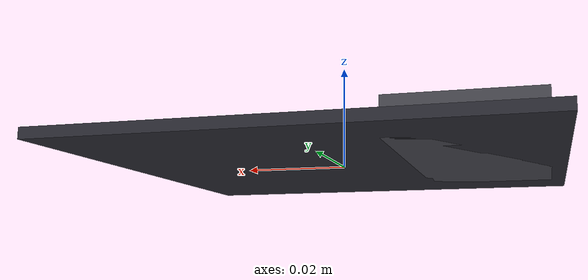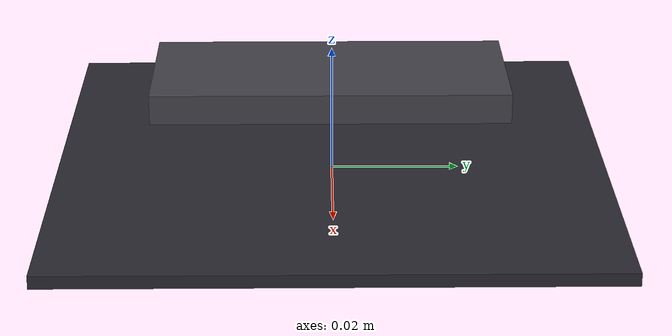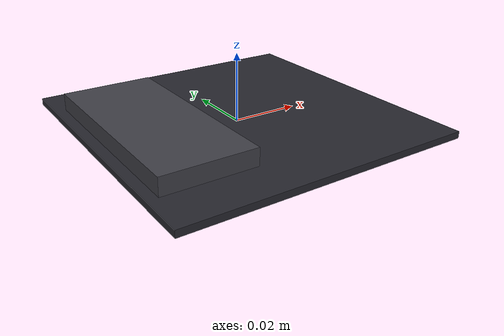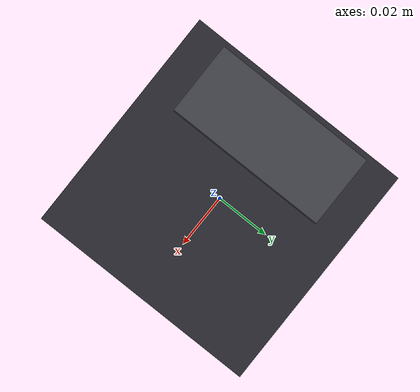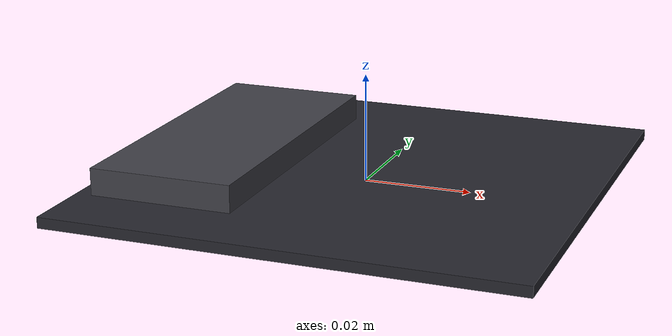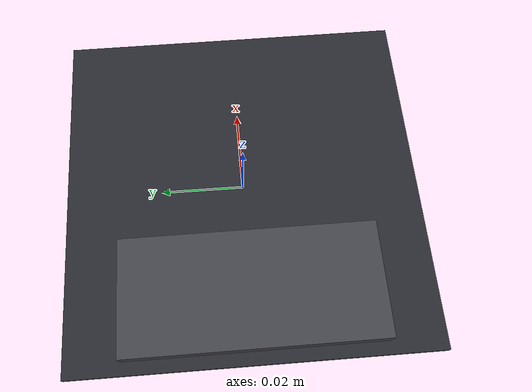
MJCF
<mujoco model="Switch_Quantity1_46">
  <asset>
    <material name="Switch_Quantity1_46_bezel" rgba="0.15 0.15 0.18 1" specular="0.75" shininess="0.85"/>
    <material name="Switch_Quantity1_46_button" rgba="0.25 0.25 0.28 1" specular="0.75" shininess="0.85"/>
  </asset>
  <worldbody>
    <body name="Switch_Quantity1_46">
      <geom name="Switch_Quantity1_46_bezel" type="box"
            pos="0 0 0.001" size="0.043 0.043 0.001"
            material="Switch_Quantity1_46_bezel"/>
      <geom name="Switch_Quantity1_46_button" type="box"
            pos="-0.02667 0 0.0035" size="0.01333 0.03 0.0035"
            material="Switch_Quantity1_46_button"/>
    </body>
  </worldbody>
</mujoco>
